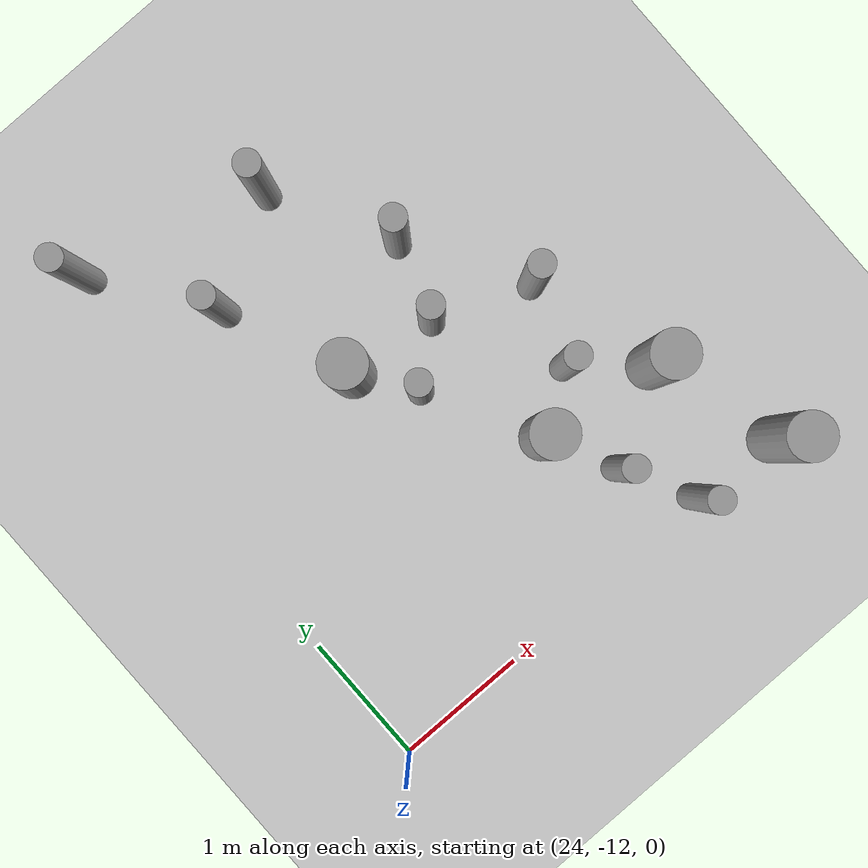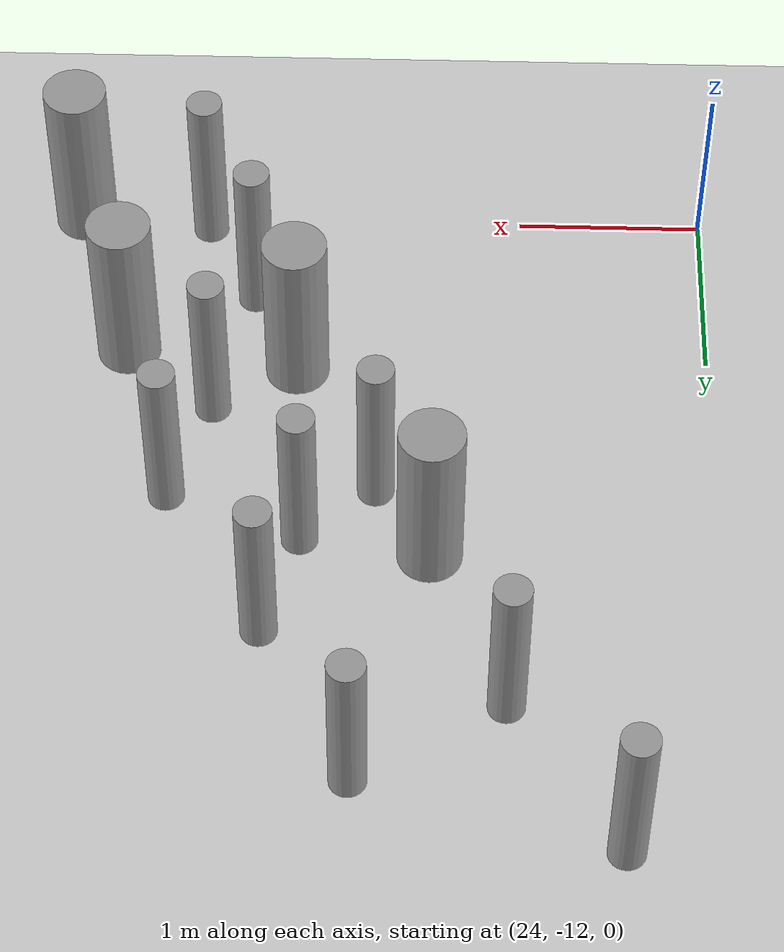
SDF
<sdf version="1.6">
 <world name="default">
  <model name="ground_plane">
   <static>1</static>
   <link name="link">
    <collision name="collision">
     <geometry><plane><normal>0 0 1</normal><size>100 100</size></plane></geometry>
     <surface><friction><ode><mu>100</mu><mu2>50</mu2></ode></friction></surface>
    </collision>
    <visual name="visual">
     <cast_shadows>0</cast_shadows>
     <geometry><plane><normal>0 0 1</normal><size>100 100</size></plane></geometry>
     <material>
      <script><uri>file://media/materials/scripts/gazebo.material</uri><name>Gazebo/Grey</name></script>
     </material>
    </visual>
   </link>
  </model>
  <model name="cyl_wall_clone_clone_1_clone_1_clone_clone_3">
   <link name="link_0">
    <pose>-2.73893 -0.366465 0 0 -0 0</pose>
    <inertial>
     <mass>0.0374993</mass>
     <inertia>
      <ixx>0.00321281</ixx>
      <ixy>0</ixy>
      <ixz>0</ixz>
      <iyy>0.00321281</iyy>
      <iyz>0</iyz>
      <izz>0.000175774</izz>
     </inertia>
    </inertial>
    <visual name="visual">
     <geometry><cylinder><radius>0.0968661</radius><length>1</length></cylinder></geometry>
     <material>
      <lighting>1</lighting>
      <script><uri>file://media/materials/scripts/gazebo.material</uri><name>Gazebo/Grey</name></script>
      <ambient>0.3 0.3 0.3 1</ambient>
      <diffuse>0.7 0.7 0.7 1</diffuse>
      <specular>0.01 0.01 0.01 1</specular>
      <emissive>0 0 0 1</emissive>
     </material>
    </visual>
    <collision name="collision">
     <geometry><cylinder><radius>0.096866</radius><length>1</length></cylinder></geometry>
     <surface>
      <friction>
       <ode><mu>1</mu><mu2>1</mu2><fdir1>0 0 0</fdir1><slip1>0</slip1><slip2>0</slip2></ode>
       <torsional>
        <coefficient>1</coefficient>
        <patch_radius>0</patch_radius>
        <surface_radius>0</surface_radius>
        <use_patch_radius>1</use_patch_radius>
        <ode><slip>0</slip></ode>
       </torsional>
      </friction>
      <bounce><restitution_coefficient>0</restitution_coefficient><threshold>1e+06</threshold></bounce>
      <contact>
       <collide_without_contact>0</collide_without_contact>
       <collide_without_contact_bitmask>1</collide_without_contact_bitmask>
       <collide_bitmask>1</collide_bitmask>
       <ode>
        <soft_cfm>0</soft_cfm>
        <soft_erp>0.2</soft_erp>
        <kp>1e+13</kp>
        <kd>1</kd>
        <max_vel>0.01</max_vel>
        <min_depth>0</min_depth>
       </ode>
       <bullet>
        <split_impulse>1</split_impulse>
        <split_impulse_penetration_threshold>-0.01</split_impulse_penetration_threshold>
        <soft_cfm>0</soft_cfm>
        <soft_erp>0.2</soft_erp>
        <kp>1e+13</kp>
        <kd>1</kd>
       </bullet>
      </contact>
     </surface>
    </collision>
   </link>
   <link name="link_0_clone">
    <pose>-1.73893 0.61877 0 0 -0 0</pose>
    <inertial>
     <mass>0.0374993</mass>
     <inertia>
      <ixx>0.00321281</ixx>
      <ixy>0</ixy>
      <ixz>0</ixz>
      <iyy>0.00321281</iyy>
      <iyz>0</iyz>
      <izz>0.000175774</izz>
     </inertia>
    </inertial>
    <visual name="visual">
     <geometry><cylinder><radius>0.0968661</radius><length>1</length></cylinder></geometry>
     <material>
      <lighting>1</lighting>
      <script><uri>file://media/materials/scripts/gazebo.material</uri><name>Gazebo/Grey</name></script>
      <ambient>0.3 0.3 0.3 1</ambient>
      <diffuse>0.7 0.7 0.7 1</diffuse>
      <specular>0.01 0.01 0.01 1</specular>
      <emissive>0 0 0 1</emissive>
      <shader type="pixel"/>
     </material>
    </visual>
    <collision name="collision">
     <geometry><cylinder><radius>0.096866</radius><length>1</length></cylinder></geometry>
     <surface>
      <friction>
       <ode><mu>1</mu><mu2>1</mu2><fdir1>0 0 0</fdir1><slip1>0</slip1><slip2>0</slip2></ode>
       <torsional>
        <coefficient>1</coefficient>
        <patch_radius>0</patch_radius>
        <surface_radius>0</surface_radius>
        <use_patch_radius>1</use_patch_radius>
        <ode><slip>0</slip></ode>
       </torsional>
      </friction>
      <bounce><restitution_coefficient>0</restitution_coefficient><threshold>1e+06</threshold></bounce>
      <contact>
       <collide_without_contact>0</collide_without_contact>
       <collide_without_contact_bitmask>1</collide_without_contact_bitmask>
       <collide_bitmask>1</collide_bitmask>
       <ode>
        <soft_cfm>0</soft_cfm>
        <soft_erp>0.2</soft_erp>
        <kp>1e+13</kp>
        <kd>1</kd>
        <max_vel>0.01</max_vel>
        <min_depth>0</min_depth>
       </ode>
       <bullet>
        <split_impulse>1</split_impulse>
        <split_impulse_penetration_threshold>-0.01</split_impulse_penetration_threshold>
        <soft_cfm>0</soft_cfm>
        <soft_erp>0.2</soft_erp>
        <kp>1e+13</kp>
        <kd>1</kd>
       </bullet>
      </contact>
     </surface>
    </collision>
   </link>
   <link name="link_0_clone_clone">
    <pose>-0.327073 0.143919 0 0 -0 0</pose>
    <inertial>
     <mass>0.0374993</mass>
     <inertia>
      <ixx>0.00321281</ixx>
      <ixy>0</ixy>
      <ixz>0</ixz>
      <iyy>0.00321281</iyy>
      <iyz>0</iyz>
      <izz>0.000175774</izz>
     </inertia>
    </inertial>
    <visual name="visual">
     <geometry><cylinder><radius>0.0968661</radius><length>1</length></cylinder></geometry>
     <material>
      <lighting>1</lighting>
      <script><uri>file://media/materials/scripts/gazebo.material</uri><name>Gazebo/Grey</name></script>
      <ambient>0.3 0.3 0.3 1</ambient>
      <diffuse>0.7 0.7 0.7 1</diffuse>
      <specular>0.01 0.01 0.01 1</specular>
      <emissive>0 0 0 1</emissive>
      <shader type="pixel"/>
     </material>
    </visual>
    <collision name="collision">
     <geometry><cylinder><radius>0.096866</radius><length>1</length></cylinder></geometry>
     <surface>
      <friction>
       <ode><mu>1</mu><mu2>1</mu2><fdir1>0 0 0</fdir1><slip1>0</slip1><slip2>0</slip2></ode>
       <torsional>
        <coefficient>1</coefficient>
        <patch_radius>0</patch_radius>
        <surface_radius>0</surface_radius>
        <use_patch_radius>1</use_patch_radius>
        <ode><slip>0</slip></ode>
       </torsional>
      </friction>
      <bounce><restitution_coefficient>0</restitution_coefficient><threshold>1e+06</threshold></bounce>
      <contact>
       <collide_without_contact>0</collide_without_contact>
       <collide_without_contact_bitmask>1</collide_without_contact_bitmask>
       <collide_bitmask>1</collide_bitmask>
       <ode>
        <soft_cfm>0</soft_cfm>
        <soft_erp>0.2</soft_erp>
        <kp>1e+13</kp>
        <kd>1</kd>
        <max_vel>0.01</max_vel>
        <min_depth>0</min_depth>
       </ode>
       <bullet>
        <split_impulse>1</split_impulse>
        <split_impulse_penetration_threshold>-0.01</split_impulse_penetration_threshold>
        <soft_cfm>0</soft_cfm>
        <soft_erp>0.2</soft_erp>
        <kp>1e+13</kp>
        <kd>1</kd>
       </bullet>
      </contact>
     </surface>
    </collision>
   </link>
   <link name="link_0_clone_clone_0">
    <pose>1.26107 -0.419359 0 0 -0 0</pose>
    <inertial>
     <mass>0.0374993</mass>
     <inertia>
      <ixx>0.00321281</ixx>
      <ixy>0</ixy>
      <ixz>0</ixz>
      <iyy>0.00321281</iyy>
      <iyz>0</iyz>
      <izz>0.000175774</izz>
     </inertia>
    </inertial>
    <visual name="visual">
     <geometry><cylinder><radius>0.0968661</radius><length>1</length></cylinder></geometry>
     <material>
      <lighting>1</lighting>
      <script><uri>file://media/materials/scripts/gazebo.material</uri><name>Gazebo/Grey</name></script>
      <ambient>0.3 0.3 0.3 1</ambient>
      <diffuse>0.7 0.7 0.7 1</diffuse>
      <specular>0.01 0.01 0.01 1</specular>
      <emissive>0 0 0 1</emissive>
      <shader type="pixel"/>
     </material>
    </visual>
    <collision name="collision">
     <geometry><cylinder><radius>0.096866</radius><length>1</length></cylinder></geometry>
     <surface>
      <friction>
       <ode><mu>1</mu><mu2>1</mu2><fdir1>0 0 0</fdir1><slip1>0</slip1><slip2>0</slip2></ode>
       <torsional>
        <coefficient>1</coefficient>
        <patch_radius>0</patch_radius>
        <surface_radius>0</surface_radius>
        <use_patch_radius>1</use_patch_radius>
        <ode><slip>0</slip></ode>
       </torsional>
      </friction>
      <bounce><restitution_coefficient>0</restitution_coefficient><threshold>1e+06</threshold></bounce>
      <contact>
       <collide_without_contact>0</collide_without_contact>
       <collide_without_contact_bitmask>1</collide_without_contact_bitmask>
       <collide_bitmask>1</collide_bitmask>
       <ode>
        <soft_cfm>0</soft_cfm>
        <soft_erp>0.2</soft_erp>
        <kp>1e+13</kp>
        <kd>1</kd>
        <max_vel>0.01</max_vel>
        <min_depth>0</min_depth>
       </ode>
       <bullet>
        <split_impulse>1</split_impulse>
        <split_impulse_penetration_threshold>-0.01</split_impulse_penetration_threshold>
        <soft_cfm>0</soft_cfm>
        <soft_erp>0.2</soft_erp>
        <kp>1e+13</kp>
        <kd>1</kd>
       </bullet>
      </contact>
     </surface>
    </collision>
   </link>
   <link name="link_0_clone_clone_1">
    <pose>-1.73893 -0.277168 0 0 -0 0</pose>
    <inertial>
     <mass>0.0374993</mass>
     <inertia>
      <ixx>0.00321281</ixx>
      <ixy>0</ixy>
      <ixz>0</ixz>
      <iyy>0.00321281</iyy>
      <iyz>0</iyz>
      <izz>0.000175774</izz>
     </inertia>
    </inertial>
    <visual name="visual">
     <geometry><cylinder><radius>0.0968661</radius><length>1</length></cylinder></geometry>
     <material>
      <lighting>1</lighting>
      <script><uri>file://media/materials/scripts/gazebo.material</uri><name>Gazebo/Grey</name></script>
      <ambient>0.3 0.3 0.3 1</ambient>
      <diffuse>0.7 0.7 0.7 1</diffuse>
      <specular>0.01 0.01 0.01 1</specular>
      <emissive>0 0 0 1</emissive>
      <shader type="pixel"/>
     </material>
    </visual>
    <collision name="collision">
     <geometry><cylinder><radius>0.096866</radius><length>1</length></cylinder></geometry>
     <surface>
      <friction>
       <ode><mu>1</mu><mu2>1</mu2><fdir1>0 0 0</fdir1><slip1>0</slip1><slip2>0</slip2></ode>
       <torsional>
        <coefficient>1</coefficient>
        <patch_radius>0</patch_radius>
        <surface_radius>0</surface_radius>
        <use_patch_radius>1</use_patch_radius>
        <ode><slip>0</slip></ode>
       </torsional>
      </friction>
      <bounce><restitution_coefficient>0</restitution_coefficient><threshold>1e+06</threshold></bounce>
      <contact>
       <collide_without_contact>0</collide_without_contact>
       <collide_without_contact_bitmask>1</collide_without_contact_bitmask>
       <collide_bitmask>1</collide_bitmask>
       <ode>
        <soft_cfm>0</soft_cfm>
        <soft_erp>0.2</soft_erp>
        <kp>1e+13</kp>
        <kd>1</kd>
        <max_vel>0.01</max_vel>
        <min_depth>0</min_depth>
       </ode>
       <bullet>
        <split_impulse>1</split_impulse>
        <split_impulse_penetration_threshold>-0.01</split_impulse_penetration_threshold>
        <soft_cfm>0</soft_cfm>
        <soft_erp>0.2</soft_erp>
        <kp>1e+13</kp>
        <kd>1</kd>
       </bullet>
      </contact>
     </surface>
    </collision>
   </link>
   <link name="link_0_clone_clone_2">
    <pose>-0.738934 0.593961 0 0 -0 0</pose>
    <inertial>
     <mass>0.0374993</mass>
     <inertia>
      <ixx>0.00321281</ixx>
      <ixy>0</ixy>
      <ixz>0</ixz>
      <iyy>0.00321281</iyy>
      <iyz>0</iyz>
      <izz>0.000175774</izz>
     </inertia>
    </inertial>
    <visual name="visual">
     <geometry><cylinder><radius>0.0968661</radius><length>1</length></cylinder></geometry>
     <material>
      <lighting>1</lighting>
      <script><uri>file://media/materials/scripts/gazebo.material</uri><name>Gazebo/Grey</name></script>
      <ambient>0.3 0.3 0.3 1</ambient>
      <diffuse>0.7 0.7 0.7 1</diffuse>
      <specular>0.01 0.01 0.01 1</specular>
      <emissive>0 0 0 1</emissive>
      <shader type="pixel"/>
     </material>
    </visual>
    <collision name="collision">
     <geometry><cylinder><radius>0.096866</radius><length>1</length></cylinder></geometry>
     <surface>
      <friction>
       <ode><mu>1</mu><mu2>1</mu2><fdir1>0 0 0</fdir1><slip1>0</slip1><slip2>0</slip2></ode>
       <torsional>
        <coefficient>1</coefficient>
        <patch_radius>0</patch_radius>
        <surface_radius>0</surface_radius>
        <use_patch_radius>1</use_patch_radius>
        <ode><slip>0</slip></ode>
       </torsional>
      </friction>
      <bounce><restitution_coefficient>0</restitution_coefficient><threshold>1e+06</threshold></bounce>
      <contact>
       <collide_without_contact>0</collide_without_contact>
       <collide_without_contact_bitmask>1</collide_without_contact_bitmask>
       <collide_bitmask>1</collide_bitmask>
       <ode>
        <soft_cfm>0</soft_cfm>
        <soft_erp>0.2</soft_erp>
        <kp>1e+13</kp>
        <kd>1</kd>
        <max_vel>0.01</max_vel>
        <min_depth>0</min_depth>
       </ode>
       <bullet>
        <split_impulse>1</split_impulse>
        <split_impulse_penetration_threshold>-0.01</split_impulse_penetration_threshold>
        <soft_cfm>0</soft_cfm>
        <soft_erp>0.2</soft_erp>
        <kp>1e+13</kp>
        <kd>1</kd>
       </bullet>
      </contact>
     </surface>
    </collision>
   </link>
   <link name="link_0_clone_clone_3">
    <pose>0.261066 0.624849 0 0 -0 0</pose>
    <inertial>
     <mass>0.0374993</mass>
     <inertia>
      <ixx>0.00321281</ixx>
      <ixy>0</ixy>
      <ixz>0</ixz>
      <iyy>0.00321281</iyy>
      <iyz>0</iyz>
      <izz>0.000175774</izz>
     </inertia>
    </inertial>
    <visual name="visual">
     <geometry><cylinder><radius>0.0968661</radius><length>1</length></cylinder></geometry>
     <material>
      <lighting>1</lighting>
      <script><uri>file://media/materials/scripts/gazebo.material</uri><name>Gazebo/Grey</name></script>
      <ambient>0.3 0.3 0.3 1</ambient>
      <diffuse>0.7 0.7 0.7 1</diffuse>
      <specular>0.01 0.01 0.01 1</specular>
      <emissive>0 0 0 1</emissive>
      <shader type="pixel"/>
     </material>
    </visual>
    <collision name="collision">
     <geometry><cylinder><radius>0.096866</radius><length>1</length></cylinder></geometry>
     <surface>
      <friction>
       <ode><mu>1</mu><mu2>1</mu2><fdir1>0 0 0</fdir1><slip1>0</slip1><slip2>0</slip2></ode>
       <torsional>
        <coefficient>1</coefficient>
        <patch_radius>0</patch_radius>
        <surface_radius>0</surface_radius>
        <use_patch_radius>1</use_patch_radius>
        <ode><slip>0</slip></ode>
       </torsional>
      </friction>
      <bounce><restitution_coefficient>0</restitution_coefficient><threshold>1e+06</threshold></bounce>
      <contact>
       <collide_without_contact>0</collide_without_contact>
       <collide_without_contact_bitmask>1</collide_without_contact_bitmask>
       <collide_bitmask>1</collide_bitmask>
       <ode>
        <soft_cfm>0</soft_cfm>
        <soft_erp>0.2</soft_erp>
        <kp>1e+13</kp>
        <kd>1</kd>
        <max_vel>0.01</max_vel>
        <min_depth>0</min_depth>
       </ode>
       <bullet>
        <split_impulse>1</split_impulse>
        <split_impulse_penetration_threshold>-0.01</split_impulse_penetration_threshold>
        <soft_cfm>0</soft_cfm>
        <soft_erp>0.2</soft_erp>
        <kp>1e+13</kp>
        <kd>1</kd>
       </bullet>
      </contact>
     </surface>
    </collision>
   </link>
   <link name="link_0_clone_clone_4">
    <pose>-0.239049 -0.353105 0 0 -0 0</pose>
    <inertial>
     <mass>0.0374993</mass>
     <inertia>
      <ixx>0.00321281</ixx>
      <ixy>0</ixy>
      <ixz>0</ixz>
      <iyy>0.00321281</iyy>
      <iyz>0</iyz>
      <izz>0.000175774</izz>
     </inertia>
    </inertial>
    <visual name="visual">
     <geometry><cylinder><radius>0.0968661</radius><length>1</length></cylinder></geometry>
     <material>
      <lighting>1</lighting>
      <script><uri>file://media/materials/scripts/gazebo.material</uri><name>Gazebo/Grey</name></script>
      <ambient>0.3 0.3 0.3 1</ambient>
      <diffuse>0.7 0.7 0.7 1</diffuse>
      <specular>0.01 0.01 0.01 1</specular>
      <emissive>0 0 0 1</emissive>
      <shader type="pixel"/>
     </material>
    </visual>
    <collision name="collision">
     <geometry><cylinder><radius>0.096866</radius><length>1</length></cylinder></geometry>
     <surface>
      <friction>
       <ode><mu>1</mu><mu2>1</mu2><fdir1>0 0 0</fdir1><slip1>0</slip1><slip2>0</slip2></ode>
       <torsional>
        <coefficient>1</coefficient>
        <patch_radius>0</patch_radius>
        <surface_radius>0</surface_radius>
        <use_patch_radius>1</use_patch_radius>
        <ode><slip>0</slip></ode>
       </torsional>
      </friction>
      <bounce><restitution_coefficient>0</restitution_coefficient><threshold>1e+06</threshold></bounce>
      <contact>
       <collide_without_contact>0</collide_without_contact>
       <collide_without_contact_bitmask>1</collide_without_contact_bitmask>
       <collide_bitmask>1</collide_bitmask>
       <ode>
        <soft_cfm>0</soft_cfm>
        <soft_erp>0.2</soft_erp>
        <kp>1e+13</kp>
        <kd>1</kd>
        <max_vel>0.01</max_vel>
        <min_depth>0</min_depth>
       </ode>
       <bullet>
        <split_impulse>1</split_impulse>
        <split_impulse_penetration_threshold>-0.01</split_impulse_penetration_threshold>
        <soft_cfm>0</soft_cfm>
        <soft_erp>0.2</soft_erp>
        <kp>1e+13</kp>
        <kd>1</kd>
       </bullet>
      </contact>
     </surface>
    </collision>
   </link>
   <link name="link_0_clone_clone_5">
    <pose>0.672792 0.143919 0 0 -0 0</pose>
    <inertial>
     <mass>0.0374993</mass>
     <inertia>
      <ixx>0.00321281</ixx>
      <ixy>0</ixy>
      <ixz>0</ixz>
      <iyy>0.00321281</iyy>
      <iyz>0</iyz>
      <izz>0.000175774</izz>
     </inertia>
    </inertial>
    <visual name="visual">
     <geometry><cylinder><radius>0.0968661</radius><length>1</length></cylinder></geometry>
     <material>
      <lighting>1</lighting>
      <script><uri>file://media/materials/scripts/gazebo.material</uri><name>Gazebo/Grey</name></script>
      <ambient>0.3 0.3 0.3 1</ambient>
      <diffuse>0.7 0.7 0.7 1</diffuse>
      <specular>0.01 0.01 0.01 1</specular>
      <emissive>0 0 0 1</emissive>
      <shader type="pixel"/>
     </material>
    </visual>
    <collision name="collision">
     <geometry><cylinder><radius>0.096866</radius><length>1</length></cylinder></geometry>
     <surface>
      <friction>
       <ode><mu>1</mu><mu2>1</mu2><fdir1>0 0 0</fdir1><slip1>0</slip1><slip2>0</slip2></ode>
       <torsional>
        <coefficient>1</coefficient>
        <patch_radius>0</patch_radius>
        <surface_radius>0</surface_radius>
        <use_patch_radius>1</use_patch_radius>
        <ode><slip>0</slip></ode>
       </torsional>
      </friction>
      <bounce><restitution_coefficient>0</restitution_coefficient><threshold>1e+06</threshold></bounce>
      <contact>
       <collide_without_contact>0</collide_without_contact>
       <collide_without_contact_bitmask>1</collide_without_contact_bitmask>
       <collide_bitmask>1</collide_bitmask>
       <ode>
        <soft_cfm>0</soft_cfm>
        <soft_erp>0.2</soft_erp>
        <kp>1e+13</kp>
        <kd>1</kd>
        <max_vel>0.01</max_vel>
        <min_depth>0</min_depth>
       </ode>
       <bullet>
        <split_impulse>1</split_impulse>
        <split_impulse_penetration_threshold>-0.01</split_impulse_penetration_threshold>
        <soft_cfm>0</soft_cfm>
        <soft_erp>0.2</soft_erp>
        <kp>1e+13</kp>
        <kd>1</kd>
       </bullet>
      </contact>
     </surface>
    </collision>
   </link>
   <link name="link_0_clone_clone_6">
    <pose>1.84596 -0.433423 0 0 -0 0</pose>
    <inertial>
     <mass>0.0374993</mass>
     <inertia>
      <ixx>0.00321281</ixx>
      <ixy>0</ixy>
      <ixz>0</ixz>
      <iyy>0.00321281</iyy>
      <iyz>0</iyz>
      <izz>0.000175774</izz>
     </inertia>
    </inertial>
    <visual name="visual">
     <geometry><cylinder><radius>0.0968661</radius><length>1</length></cylinder></geometry>
     <material>
      <lighting>1</lighting>
      <script><uri>file://media/materials/scripts/gazebo.material</uri><name>Gazebo/Grey</name></script>
      <ambient>0.3 0.3 0.3 1</ambient>
      <diffuse>0.7 0.7 0.7 1</diffuse>
      <specular>0.01 0.01 0.01 1</specular>
      <emissive>0 0 0 1</emissive>
      <shader type="pixel"/>
     </material>
    </visual>
    <collision name="collision">
     <geometry><cylinder><radius>0.096866</radius><length>1</length></cylinder></geometry>
     <surface>
      <friction>
       <ode><mu>1</mu><mu2>1</mu2><fdir1>0 0 0</fdir1><slip1>0</slip1><slip2>0</slip2></ode>
       <torsional>
        <coefficient>1</coefficient>
        <patch_radius>0</patch_radius>
        <surface_radius>0</surface_radius>
        <use_patch_radius>1</use_patch_radius>
        <ode><slip>0</slip></ode>
       </torsional>
      </friction>
      <bounce><restitution_coefficient>0</restitution_coefficient><threshold>1e+06</threshold></bounce>
      <contact>
       <collide_without_contact>0</collide_without_contact>
       <collide_without_contact_bitmask>1</collide_without_contact_bitmask>
       <collide_bitmask>1</collide_bitmask>
       <ode>
        <soft_cfm>0</soft_cfm>
        <soft_erp>0.2</soft_erp>
        <kp>1e+13</kp>
        <kd>1</kd>
        <max_vel>0.01</max_vel>
        <min_depth>0</min_depth>
       </ode>
       <bullet>
        <split_impulse>1</split_impulse>
        <split_impulse_penetration_threshold>-0.01</split_impulse_penetration_threshold>
        <soft_cfm>0</soft_cfm>
        <soft_erp>0.2</soft_erp>
        <kp>1e+13</kp>
        <kd>1</kd>
       </bullet>
      </contact>
     </surface>
    </collision>
   </link>
   <link name="link_1">
    <pose>-0.738934 -0.397931 0 0 -0 0</pose>
    <inertial>
     <mass>0.117398</mass>
     <inertia>
      <ixx>0.0106445</ixx>
      <ixy>0</ixy>
      <ixz>0</ixz>
      <iyy>0.0106445</iyy>
      <iyz>0</iyz>
      <izz>0.00172278</izz>
     </inertia>
    </inertial>
    <visual name="visual">
     <geometry><cylinder><radius>0.171317</radius><length>1</length></cylinder></geometry>
     <material>
      <lighting>1</lighting>
      <script><uri>file://media/materials/scripts/gazebo.material</uri><name>Gazebo/Grey</name></script>
      <ambient>0.3 0.3 0.3 1</ambient>
      <diffuse>0.7 0.7 0.7 1</diffuse>
      <specular>0.01 0.01 0.01 1</specular>
      <emissive>0 0 0 1</emissive>
     </material>
    </visual>
    <collision name="collision">
     <geometry><cylinder><radius>0.171317</radius><length>1</length></cylinder></geometry>
     <surface>
      <friction>
       <ode><mu>1</mu><mu2>1</mu2><fdir1>0 0 0</fdir1><slip1>0</slip1><slip2>0</slip2></ode>
       <torsional>
        <coefficient>1</coefficient>
        <patch_radius>0</patch_radius>
        <surface_radius>0</surface_radius>
        <use_patch_radius>1</use_patch_radius>
        <ode><slip>0</slip></ode>
       </torsional>
      </friction>
      <bounce><restitution_coefficient>0</restitution_coefficient><threshold>1e+06</threshold></bounce>
      <contact>
       <collide_without_contact>0</collide_without_contact>
       <collide_without_contact_bitmask>1</collide_without_contact_bitmask>
       <collide_bitmask>1</collide_bitmask>
       <ode>
        <soft_cfm>0</soft_cfm>
        <soft_erp>0.2</soft_erp>
        <kp>1e+13</kp>
        <kd>1</kd>
        <max_vel>0.01</max_vel>
        <min_depth>0</min_depth>
       </ode>
       <bullet>
        <split_impulse>1</split_impulse>
        <split_impulse_penetration_threshold>-0.01</split_impulse_penetration_threshold>
        <soft_cfm>0</soft_cfm>
        <soft_erp>0.2</soft_erp>
        <kp>1e+13</kp>
        <kd>1</kd>
       </bullet>
      </contact>
     </surface>
    </collision>
   </link>
   <link name="link_1_clone">
    <pose>0.697784 -0.380861 0 0 -0 0</pose>
    <inertial>
     <mass>0.117398</mass>
     <inertia>
      <ixx>0.0106445</ixx>
      <ixy>0</ixy>
      <ixz>0</ixz>
      <iyy>0.0106445</iyy>
      <iyz>0</iyz>
      <izz>0.00172278</izz>
     </inertia>
    </inertial>
    <visual name="visual">
     <geometry><cylinder><radius>0.171317</radius><length>1</length></cylinder></geometry>
     <material>
      <lighting>1</lighting>
      <script><uri>file://media/materials/scripts/gazebo.material</uri><name>Gazebo/Grey</name></script>
      <ambient>0.3 0.3 0.3 1</ambient>
      <diffuse>0.7 0.7 0.7 1</diffuse>
      <specular>0.01 0.01 0.01 1</specular>
      <emissive>0 0 0 1</emissive>
      <shader type="pixel"/>
     </material>
    </visual>
    <collision name="collision">
     <geometry><cylinder><radius>0.171317</radius><length>1</length></cylinder></geometry>
     <surface>
      <friction>
       <ode><mu>1</mu><mu2>1</mu2><fdir1>0 0 0</fdir1><slip1>0</slip1><slip2>0</slip2></ode>
       <torsional>
        <coefficient>1</coefficient>
        <patch_radius>0</patch_radius>
        <surface_radius>0</surface_radius>
        <use_patch_radius>1</use_patch_radius>
        <ode><slip>0</slip></ode>
       </torsional>
      </friction>
      <bounce><restitution_coefficient>0</restitution_coefficient><threshold>1e+06</threshold></bounce>
      <contact>
       <collide_without_contact>0</collide_without_contact>
       <collide_without_contact_bitmask>1</collide_without_contact_bitmask>
       <collide_bitmask>1</collide_bitmask>
       <ode>
        <soft_cfm>0</soft_cfm>
        <soft_erp>0.2</soft_erp>
        <kp>1e+13</kp>
        <kd>1</kd>
        <max_vel>0.01</max_vel>
        <min_depth>0</min_depth>
       </ode>
       <bullet>
        <split_impulse>1</split_impulse>
        <split_impulse_penetration_threshold>-0.01</split_impulse_penetration_threshold>
        <soft_cfm>0</soft_cfm>
        <soft_erp>0.2</soft_erp>
        <kp>1e+13</kp>
        <kd>1</kd>
       </bullet>
      </contact>
     </surface>
    </collision>
   </link>
   <link name="link_1_clone_0">
    <pose>1.26107 0.358974 0 0 -0 0</pose>
    <inertial>
     <mass>0.117398</mass>
     <inertia>
      <ixx>0.0106445</ixx>
      <ixy>0</ixy>
      <ixz>0</ixz>
      <iyy>0.0106445</iyy>
      <iyz>0</iyz>
      <izz>0.00172278</izz>
     </inertia>
    </inertial>
    <visual name="visual">
     <geometry><cylinder><radius>0.171317</radius><length>1</length></cylinder></geometry>
     <material>
      <lighting>1</lighting>
      <script><uri>file://media/materials/scripts/gazebo.material</uri><name>Gazebo/Grey</name></script>
      <ambient>0.3 0.3 0.3 1</ambient>
      <diffuse>0.7 0.7 0.7 1</diffuse>
      <specular>0.01 0.01 0.01 1</specular>
      <emissive>0 0 0 1</emissive>
      <shader type="pixel"/>
     </material>
    </visual>
    <collision name="collision">
     <geometry><cylinder><radius>0.171317</radius><length>1</length></cylinder></geometry>
     <surface>
      <friction>
       <ode><mu>1</mu><mu2>1</mu2><fdir1>0 0 0</fdir1><slip1>0</slip1><slip2>0</slip2></ode>
       <torsional>
        <coefficient>1</coefficient>
        <patch_radius>0</patch_radius>
        <surface_radius>0</surface_radius>
        <use_patch_radius>1</use_patch_radius>
        <ode><slip>0</slip></ode>
       </torsional>
      </friction>
      <bounce><restitution_coefficient>0</restitution_coefficient><threshold>1e+06</threshold></bounce>
      <contact>
       <collide_without_contact>0</collide_without_contact>
       <collide_without_contact_bitmask>1</collide_without_contact_bitmask>
       <collide_bitmask>1</collide_bitmask>
       <ode>
        <soft_cfm>0</soft_cfm>
        <soft_erp>0.2</soft_erp>
        <kp>1e+13</kp>
        <kd>1</kd>
        <max_vel>0.01</max_vel>
        <min_depth>0</min_depth>
       </ode>
       <bullet>
        <split_impulse>1</split_impulse>
        <split_impulse_penetration_threshold>-0.01</split_impulse_penetration_threshold>
        <soft_cfm>0</soft_cfm>
        <soft_erp>0.2</soft_erp>
        <kp>1e+13</kp>
        <kd>1</kd>
       </bullet>
      </contact>
     </surface>
    </collision>
   </link>
   <link name="link_1_clone_1">
    <pose>2.26107 0.143919 0 0 -0 0</pose>
    <inertial>
     <mass>0.117398</mass>
     <inertia>
      <ixx>0.0106445</ixx>
      <ixy>0</ixy>
      <ixz>0</ixz>
      <iyy>0.0106445</iyy>
      <iyz>0</iyz>
      <izz>0.00172278</izz>
     </inertia>
    </inertial>
    <visual name="visual">
     <geometry><cylinder><radius>0.171317</radius><length>1</length></cylinder></geometry>
     <material>
      <lighting>1</lighting>
      <script><uri>file://media/materials/scripts/gazebo.material</uri><name>Gazebo/Grey</name></script>
      <ambient>0.3 0.3 0.3 1</ambient>
      <diffuse>0.7 0.7 0.7 1</diffuse>
      <specular>0.01 0.01 0.01 1</specular>
      <emissive>0 0 0 1</emissive>
      <shader type="pixel"/>
     </material>
    </visual>
    <collision name="collision">
     <geometry><cylinder><radius>0.171317</radius><length>1</length></cylinder></geometry>
     <surface>
      <friction>
       <ode><mu>1</mu><mu2>1</mu2><fdir1>0 0 0</fdir1><slip1>0</slip1><slip2>0</slip2></ode>
       <torsional>
        <coefficient>1</coefficient>
        <patch_radius>0</patch_radius>
        <surface_radius>0</surface_radius>
        <use_patch_radius>1</use_patch_radius>
        <ode><slip>0</slip></ode>
       </torsional>
      </friction>
      <bounce><restitution_coefficient>0</restitution_coefficient><threshold>1e+06</threshold></bounce>
      <contact>
       <collide_without_contact>0</collide_without_contact>
       <collide_without_contact_bitmask>1</collide_without_contact_bitmask>
       <collide_bitmask>1</collide_bitmask>
       <ode>
        <soft_cfm>0</soft_cfm>
        <soft_erp>0.2</soft_erp>
        <kp>1e+13</kp>
        <kd>1</kd>
        <max_vel>0.01</max_vel>
        <min_depth>0</min_depth>
       </ode>
       <bullet>
        <split_impulse>1</split_impulse>
        <split_impulse_penetration_threshold>-0.01</split_impulse_penetration_threshold>
        <soft_cfm>0</soft_cfm>
        <soft_erp>0.2</soft_erp>
        <kp>1e+13</kp>
        <kd>1</kd>
       </bullet>
      </contact>
     </surface>
    </collision>
   </link>
   <static>1</static>
   <pose>26.1931 -10.1209 0.5 0 0 -1.04703</pose>
  </model>
 </world>
</sdf>
